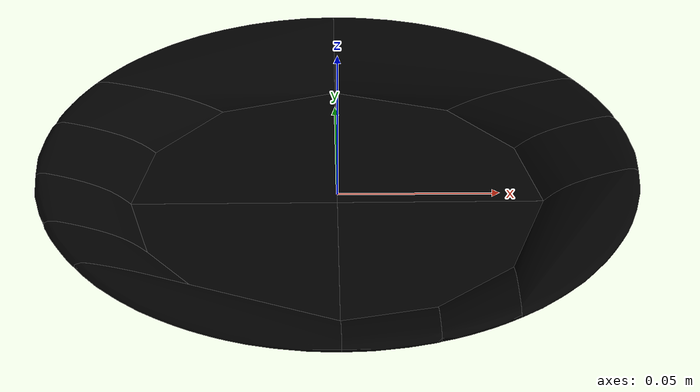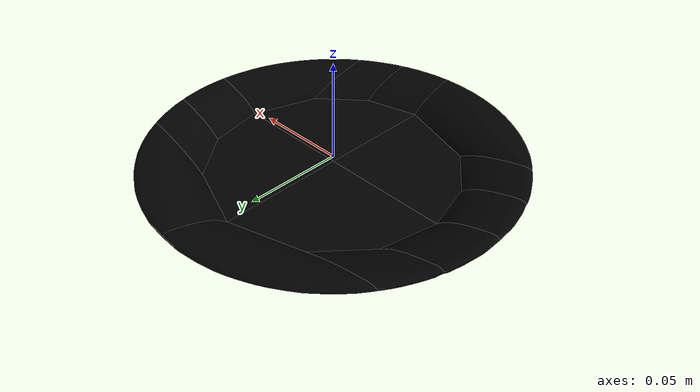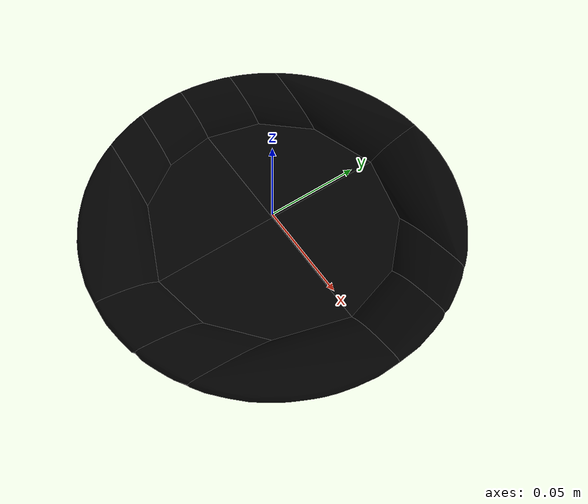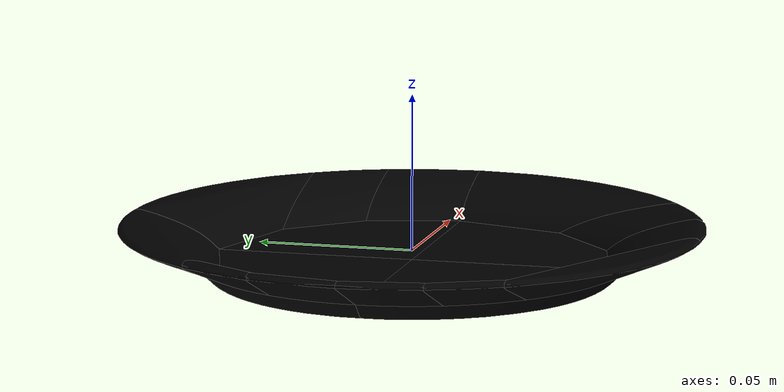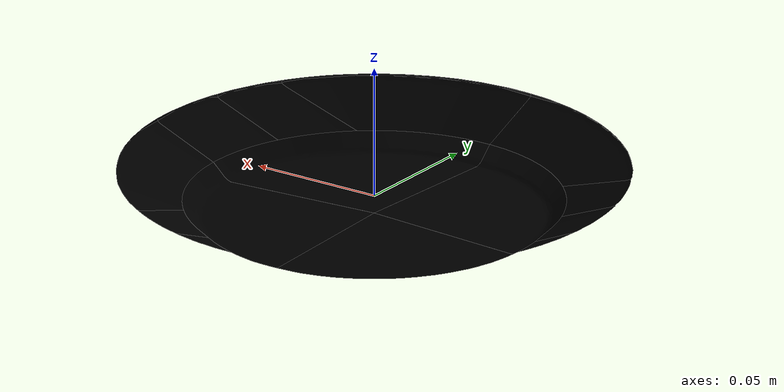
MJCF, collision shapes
<mujoco model="plate_28">
  <asset>
    <mesh file="visual/model_normalized_0.obj" name="model_normalized_0_vis" scale="0.185 0.185 0.185" refquat="1.0 0.0 0.0 0.0" />
    <texture type="2d" name="image0" file="visual/image0.png" />
    <material name="porcelain" texture="image0" specular="0.5" shininess="0.639999995" />
    <mesh file="collision/model_collision_0.obj" name="model_collision_0" scale="0.185 0.185 0.185" refquat="1.0 0.0 0.0 0.0" />
    <mesh file="collision/model_collision_1.obj" name="model_collision_1" scale="0.185 0.185 0.185" refquat="1.0 0.0 0.0 0.0" />
    <mesh file="collision/model_collision_2.obj" name="model_collision_2" scale="0.185 0.185 0.185" refquat="1.0 0.0 0.0 0.0" />
    <mesh file="collision/model_collision_3.obj" name="model_collision_3" scale="0.185 0.185 0.185" refquat="1.0 0.0 0.0 0.0" />
    <mesh file="collision/model_collision_4.obj" name="model_collision_4" scale="0.185 0.185 0.185" refquat="1.0 0.0 0.0 0.0" />
    <mesh file="collision/model_collision_5.obj" name="model_collision_5" scale="0.185 0.185 0.185" refquat="1.0 0.0 0.0 0.0" />
    <mesh file="collision/model_collision_6.obj" name="model_collision_6" scale="0.185 0.185 0.185" refquat="1.0 0.0 0.0 0.0" />
    <mesh file="collision/model_collision_7.obj" name="model_collision_7" scale="0.185 0.185 0.185" refquat="1.0 0.0 0.0 0.0" />
    <mesh file="collision/model_collision_8.obj" name="model_collision_8" scale="0.185 0.185 0.185" refquat="1.0 0.0 0.0 0.0" />
    <mesh file="collision/model_collision_9.obj" name="model_collision_9" scale="0.185 0.185 0.185" refquat="1.0 0.0 0.0 0.0" />
    <mesh file="collision/model_collision_10.obj" name="model_collision_10" scale="0.185 0.185 0.185" refquat="1.0 0.0 0.0 0.0" />
    <mesh file="collision/model_collision_11.obj" name="model_collision_11" scale="0.185 0.185 0.185" refquat="1.0 0.0 0.0 0.0" />
    <mesh file="collision/model_collision_12.obj" name="model_collision_12" scale="0.185 0.185 0.185" refquat="1.0 0.0 0.0 0.0" />
    <mesh file="collision/model_collision_13.obj" name="model_collision_13" scale="0.185 0.185 0.185" refquat="1.0 0.0 0.0 0.0" />
    <mesh file="collision/model_collision_14.obj" name="model_collision_14" scale="0.185 0.185 0.185" refquat="1.0 0.0 0.0 0.0" />
    <mesh file="collision/model_collision_15.obj" name="model_collision_15" scale="0.185 0.185 0.185" refquat="1.0 0.0 0.0 0.0" />
  </asset>
  <default>
    <default class="region">
      <geom group="1" conaffinity="0" contype="0" rgba="0 1 0 0" />
    </default>
  </default>
  <worldbody>
    <body>
      <body name="object">
        <geom density="0" type="mesh" mesh="model_normalized_0_vis" conaffinity="0" contype="0" group="2" material="porcelain" mass="0.18" />
        <geom class="region" name="reg_bbox" type="box" pos="0.0 -4.162500000017e-07 -3.545432500000074e-05" size="0.0915184492 0.09151761670000001 0.007932138624999998" />
        <geom density="0" friction="1.2 0.1 0.001" type="mesh" group="3" rgba="0 0 0 0" mesh="model_collision_0"  condim="4"/>        <geom density="0" friction="1.2 0.1 0.001" type="mesh" group="3" rgba="0 0 0 0" mesh="model_collision_1"  condim="4"/>        <geom density="0" friction="1.2 0.1 0.001" type="mesh" group="3" rgba="0 0 0 0" mesh="model_collision_2"  condim="4"/>        <geom density="0" friction="1.2 0.1 0.001" type="mesh" group="3" rgba="0 0 0 0" mesh="model_collision_3"  condim="4"/>        <geom density="0" friction="1.2 0.1 0.001" type="mesh" group="3" rgba="0 0 0 0" mesh="model_collision_4"  condim="4"/>        <geom density="0" friction="1.2 0.1 0.001" type="mesh" group="3" rgba="0 0 0 0" mesh="model_collision_5"  condim="4"/>        <geom density="0" friction="1.2 0.1 0.001" type="mesh" group="3" rgba="0 0 0 0" mesh="model_collision_6"  condim="4"/>        <geom density="0" friction="1.2 0.1 0.001" type="mesh" group="3" rgba="0 0 0 0" mesh="model_collision_7"  condim="4"/>        <geom density="0" friction="1.2 0.1 0.001" type="mesh" group="3" rgba="0 0 0 0" mesh="model_collision_8"  condim="4"/>        <geom density="0" friction="1.2 0.1 0.001" type="mesh" group="3" rgba="0 0 0 0" mesh="model_collision_9"  condim="4"/>        <geom density="0" friction="1.2 0.1 0.001" type="mesh" group="3" rgba="0 0 0 0" mesh="model_collision_10"  condim="4"/>        <geom density="0" friction="1.2 0.1 0.001" type="mesh" group="3" rgba="0 0 0 0" mesh="model_collision_11"  condim="4"/>        <geom density="0" friction="1.2 0.1 0.001" type="mesh" group="3" rgba="0 0 0 0" mesh="model_collision_12"  condim="4"/>        <geom density="0" friction="1.2 0.1 0.001" type="mesh" group="3" rgba="0 0 0 0" mesh="model_collision_13"  condim="4"/>        <geom density="0" friction="1.2 0.1 0.001" type="mesh" group="3" rgba="0 0 0 0" mesh="model_collision_14"  condim="4"/>        <geom density="0" friction="1.2 0.1 0.001" type="mesh" group="3" rgba="0 0 0 0" mesh="model_collision_15"  condim="4"/>      </body>
    </body>
  </worldbody>
</mujoco>
